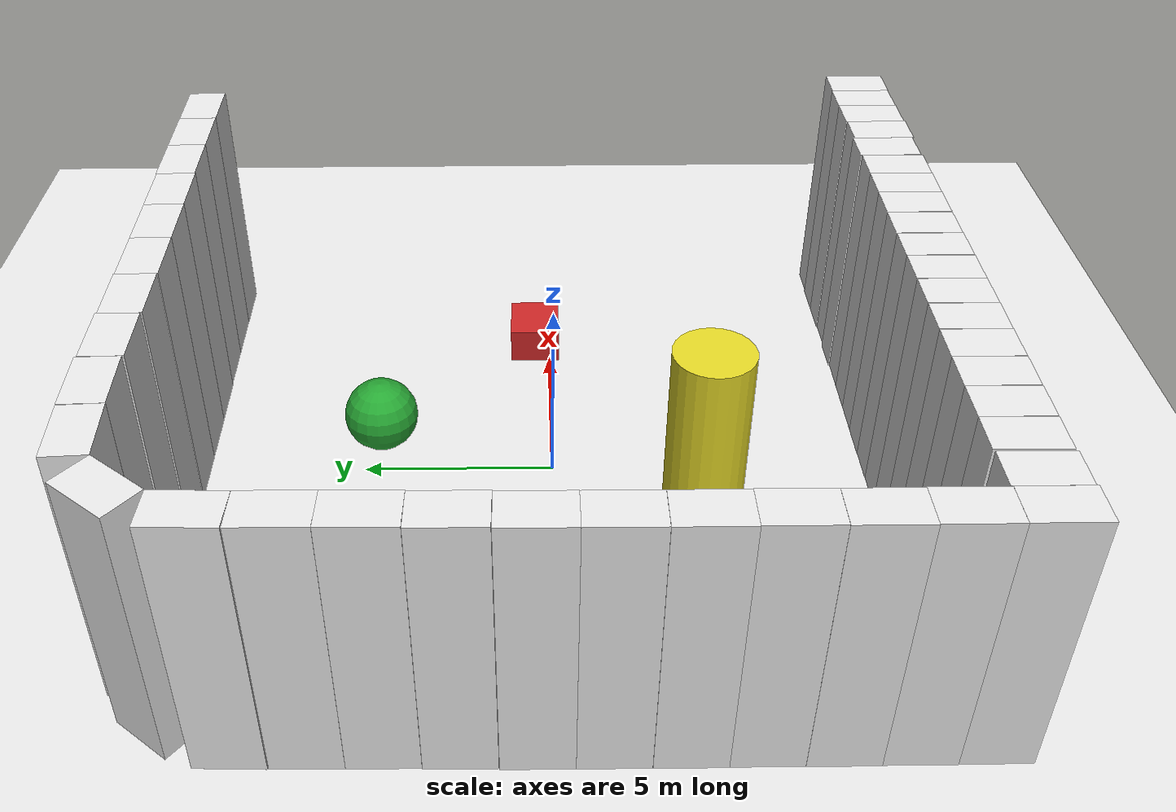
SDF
<sdf version="1.6">
 <world name="default">
  <light name="sun" type="directional">
   <pose>0 0 10 0 -0 0</pose>
   <diffuse>0.8 0.8 0.8 1</diffuse>
   <specular>0.1 0.1 0.1 1</specular>
   <attenuation>
    <range>1000</range>
    <constant>0.9</constant>
    <linear>0.01</linear>
    <quadratic>0.001</quadratic>
   </attenuation>
   <direction>-0.5 0.5 -1</direction>
  </light>
  <model name="ground_plane">
   <static>1</static>
   <link name="link">
    <collision name="collision">
     <geometry><plane><normal>0 0 1</normal><size>100 100</size></plane></geometry>
     <surface><friction><ode><mu>100</mu><mu2>50</mu2></ode></friction></surface>
    </collision>
    <visual name="visual">
     <cast_shadows>0</cast_shadows>
     <geometry><plane><normal>0 0 1</normal><size>100 100</size></plane></geometry>
     <material>
      <script><uri>file://media/materials/scripts/gazebo.material</uri><name>Gazebo/White</name></script>
     </material>
    </visual>
   </link>
  </model>
  <gravity>0 0 -9.8</gravity>
  <magnetic_field>6e-06 2.3e-05 -4.2e-05</magnetic_field>
  <atmosphere type="adiabatic"/>
  <physics name="default_physics" default="0" type="ode">
   <max_step_size>0.001</max_step_size>
   <real_time_factor>1</real_time_factor>
   <real_time_update_rate>1000</real_time_update_rate>
  </physics>
  <scene><ambient>0.4 0.4 0.4 1</ambient><background>0.7 0.7 0.7 1</background><shadows>1</shadows></scene>
  <spherical_coordinates>
   <surface_model>EARTH_WGS84</surface_model>
   <latitude_deg>0</latitude_deg>
   <longitude_deg>0</longitude_deg>
   <elevation>0</elevation>
   <heading_deg>0</heading_deg>
  </spherical_coordinates>
  <model name="unit_box_0_0">
   <pose>9.06464 -9.0624 3.4726 -0 -1e-06 0.005825</pose>
   <link name="link">
    <inertial>
     <mass>1</mass>
     <inertia>
      <ixx>0.166667</ixx>
      <ixy>0</ixy>
      <ixz>0</ixz>
      <iyy>0.166667</iyy>
      <iyz>0</iyz>
      <izz>0.166667</izz>
     </inertia>
    </inertial>
    <collision name="collision"><geometry><box><size>1 1.61233 6.9452</size></box></geometry></collision>
    <visual name="visual">
     <geometry><box><size>1 1.61233 6.9452</size></box></geometry>
     <material>
      <script><name>Gazebo/White</name><uri>file://media/materials/scripts/gazebo.material</uri></script>
     </material>
    </visual>
   </link>
  </model>
  <model name="unit_box_0_0_clone">
   <pose>8.06431 -9.0495 3.4726 0 -0 0.006054</pose>
   <link name="link">
    <inertial>
     <mass>1</mass>
     <inertia>
      <ixx>0.166667</ixx>
      <ixy>0</ixy>
      <ixz>0</ixz>
      <iyy>0.166667</iyy>
      <iyz>0</iyz>
      <izz>0.166667</izz>
     </inertia>
    </inertial>
    <collision name="collision"><geometry><box><size>1 1.61233 6.94521</size></box></geometry></collision>
    <visual name="visual">
     <geometry><box><size>1 1.61233 6.94521</size></box></geometry>
     <material>
      <script><name>Gazebo/White</name><uri>file://media/materials/scripts/gazebo.material</uri></script>
     </material>
    </visual>
   </link>
  </model>
  <model name="unit_box_0_0_clone_clone">
   <pose>7.06352 -9.06098 3.47261 0 -0 0.006307</pose>
   <link name="link">
    <inertial>
     <mass>1</mass>
     <inertia>
      <ixx>0.166667</ixx>
      <ixy>0</ixy>
      <ixz>0</ixz>
      <iyy>0.166667</iyy>
      <iyz>0</iyz>
      <izz>0.166667</izz>
     </inertia>
    </inertial>
    <collision name="collision"><geometry><box><size>1 1.61233 6.94521</size></box></geometry></collision>
    <visual name="visual">
     <geometry><box><size>1 1.61233 6.94521</size></box></geometry>
     <material>
      <script><name>Gazebo/White</name><uri>file://media/materials/scripts/gazebo.material</uri></script>
     </material>
    </visual>
   </link>
  </model>
  <model name="unit_box_0_0_clone_clone_clone">
   <pose>6.06347 -9.09784 3.47261 1e-06 -0 0.006324</pose>
   <link name="link">
    <inertial>
     <mass>1</mass>
     <inertia>
      <ixx>0.166667</ixx>
      <ixy>0</ixy>
      <ixz>0</ixz>
      <iyy>0.166667</iyy>
      <iyz>0</iyz>
      <izz>0.166667</izz>
     </inertia>
    </inertial>
    <collision name="collision"><geometry><box><size>1 1.61233 6.94521</size></box></geometry></collision>
    <visual name="visual">
     <geometry><box><size>1 1.61233 6.94521</size></box></geometry>
     <material>
      <script><name>Gazebo/White</name><uri>file://media/materials/scripts/gazebo.material</uri></script>
     </material>
    </visual>
   </link>
  </model>
  <model name="unit_box_0_0_clone_clone_clone_clone">
   <pose>5.06286 -9.05947 3.4726 0 -0 0.006063</pose>
   <link name="link">
    <inertial>
     <mass>1</mass>
     <inertia>
      <ixx>0.166667</ixx>
      <ixy>0</ixy>
      <ixz>0</ixz>
      <iyy>0.166667</iyy>
      <iyz>0</iyz>
      <izz>0.166667</izz>
     </inertia>
    </inertial>
    <collision name="collision"><geometry><box><size>1 1.61233 6.94521</size></box></geometry></collision>
    <visual name="visual">
     <geometry><box><size>1 1.61233 6.94521</size></box></geometry>
     <material>
      <script><name>Gazebo/White</name><uri>file://media/materials/scripts/gazebo.material</uri></script>
     </material>
    </visual>
   </link>
  </model>
  <model name="unit_box_0_0_clone_clone_clone_clone_clone">
   <pose>4.04969 -9.09946 3.47261 0 0 -0.003017</pose>
   <link name="link">
    <inertial>
     <mass>1</mass>
     <inertia>
      <ixx>0.166667</ixx>
      <ixy>0</ixy>
      <ixz>0</ixz>
      <iyy>0.166667</iyy>
      <iyz>0</iyz>
      <izz>0.166667</izz>
     </inertia>
    </inertial>
    <collision name="collision"><geometry><box><size>1 1.61233 6.94521</size></box></geometry></collision>
    <visual name="visual">
     <geometry><box><size>1 1.61233 6.94521</size></box></geometry>
     <material>
      <script><name>Gazebo/White</name><uri>file://media/materials/scripts/gazebo.material</uri></script>
     </material>
    </visual>
   </link>
  </model>
  <model name="unit_box_0_0_clone_clone_clone_clone_clone_clone">
   <pose>3.04946 -9.09953 3.47261 1e-06 0 -0.003255</pose>
   <link name="link">
    <inertial>
     <mass>1</mass>
     <inertia>
      <ixx>0.166667</ixx>
      <ixy>0</ixy>
      <ixz>0</ixz>
      <iyy>0.166667</iyy>
      <iyz>0</iyz>
      <izz>0.166667</izz>
     </inertia>
    </inertial>
    <collision name="collision"><geometry><box><size>1 1.61233 6.94521</size></box></geometry></collision>
    <visual name="visual">
     <geometry><box><size>1 1.61233 6.94521</size></box></geometry>
     <material>
      <script><name>Gazebo/White</name><uri>file://media/materials/scripts/gazebo.material</uri></script>
     </material>
    </visual>
   </link>
  </model>
  <model name="unit_box_0_0_clone_clone_clone_clone_clone_clone_0">
   <pose>2.04244 -9.10009 3.47261 0 0 -0.001369</pose>
   <link name="link">
    <inertial>
     <mass>1</mass>
     <inertia>
      <ixx>0.166667</ixx>
      <ixy>0</ixy>
      <ixz>0</ixz>
      <iyy>0.166667</iyy>
      <iyz>0</iyz>
      <izz>0.166667</izz>
     </inertia>
    </inertial>
    <collision name="collision"><geometry><box><size>1 1.61233 6.94521</size></box></geometry></collision>
    <visual name="visual">
     <geometry><box><size>1 1.61233 6.94521</size></box></geometry>
     <material>
      <script><name>Gazebo/White</name><uri>file://media/materials/scripts/gazebo.material</uri></script>
     </material>
    </visual>
   </link>
  </model>
  <model name="unit_box_0_0_clone_clone_clone_clone_clone_clone_0_clone">
   <pose>1.02988 -9.09657 3.4726 0 0 -0.002175</pose>
   <link name="link">
    <inertial>
     <mass>1</mass>
     <inertia>
      <ixx>0.166667</ixx>
      <ixy>0</ixy>
      <ixz>0</ixz>
      <iyy>0.166667</iyy>
      <iyz>0</iyz>
      <izz>0.166667</izz>
     </inertia>
    </inertial>
    <collision name="collision"><geometry><box><size>1 1.61233 6.94521</size></box></geometry></collision>
    <visual name="visual">
     <geometry><box><size>1 1.61233 6.94521</size></box></geometry>
     <material>
      <script><name>Gazebo/White</name><uri>file://media/materials/scripts/gazebo.material</uri></script>
     </material>
    </visual>
   </link>
  </model>
  <model name="unit_box_0_0_clone_clone_clone_clone_clone_clone_0_clone_clone">
   <pose>0.018222 -9.10438 3.47261 1e-06 -0 -0.003197</pose>
   <link name="link">
    <inertial>
     <mass>1</mass>
     <inertia>
      <ixx>0.166667</ixx>
      <ixy>0</ixy>
      <ixz>0</ixz>
      <iyy>0.166667</iyy>
      <iyz>0</iyz>
      <izz>0.166667</izz>
     </inertia>
    </inertial>
    <collision name="collision"><geometry><box><size>1 1.61233 6.94521</size></box></geometry></collision>
    <visual name="visual">
     <geometry><box><size>1 1.61233 6.94521</size></box></geometry>
     <material>
      <script><name>Gazebo/White</name><uri>file://media/materials/scripts/gazebo.material</uri></script>
     </material>
    </visual>
   </link>
  </model>
  <model name="unit_box_0_0_clone_clone_clone_clone_clone_clone_0_clone_clone_0">
   <pose>-0.993472 -9.10889 3.47261 1e-06 -0 -0.004012</pose>
   <link name="link">
    <inertial>
     <mass>1</mass>
     <inertia>
      <ixx>0.166667</ixx>
      <ixy>0</ixy>
      <ixz>0</ixz>
      <iyy>0.166667</iyy>
      <iyz>0</iyz>
      <izz>0.166667</izz>
     </inertia>
    </inertial>
    <collision name="collision"><geometry><box><size>1 1.61233 6.94521</size></box></geometry></collision>
    <visual name="visual">
     <geometry><box><size>1 1.61233 6.94521</size></box></geometry>
     <material>
      <script><name>Gazebo/White</name><uri>file://media/materials/scripts/gazebo.material</uri></script>
     </material>
    </visual>
   </link>
  </model>
  <model name="unit_box_0_0_clone_clone_clone_clone_clone_clone_0_clone_clone_1">
   <pose>-2.00536 -9.10932 3.47261 0 0 -0.002997</pose>
   <link name="link">
    <inertial>
     <mass>1</mass>
     <inertia>
      <ixx>0.166667</ixx>
      <ixy>0</ixy>
      <ixz>0</ixz>
      <iyy>0.166667</iyy>
      <iyz>0</iyz>
      <izz>0.166667</izz>
     </inertia>
    </inertial>
    <collision name="collision"><geometry><box><size>1 1.61233 6.94521</size></box></geometry></collision>
    <visual name="visual">
     <geometry><box><size>1 1.61233 6.94521</size></box></geometry>
     <material>
      <script><name>Gazebo/White</name><uri>file://media/materials/scripts/gazebo.material</uri></script>
     </material>
    </visual>
   </link>
  </model>
  <model name="unit_box_0_0_clone_clone_clone_clone_clone_clone_0_clone_clone_2">
   <pose>-3.01706 -9.10985 3.4726 0 0 -0.0036</pose>
   <link name="link">
    <inertial>
     <mass>1</mass>
     <inertia>
      <ixx>0.166667</ixx>
      <ixy>0</ixy>
      <ixz>0</ixz>
      <iyy>0.166667</iyy>
      <iyz>0</iyz>
      <izz>0.166667</izz>
     </inertia>
    </inertial>
    <collision name="collision"><geometry><box><size>1 1.61233 6.94521</size></box></geometry></collision>
    <visual name="visual">
     <geometry><box><size>1 1.61233 6.94521</size></box></geometry>
     <material>
      <script><name>Gazebo/White</name><uri>file://media/materials/scripts/gazebo.material</uri></script>
     </material>
    </visual>
   </link>
  </model>
  <model name="unit_box_0_0_clone_clone_clone_clone_clone_clone_0_clone_clone_3">
   <pose>-4.0287 -9.10986 3.4726 1e-06 -0 -0.002064</pose>
   <link name="link">
    <inertial>
     <mass>1</mass>
     <inertia>
      <ixx>0.166667</ixx>
      <ixy>0</ixy>
      <ixz>0</ixz>
      <iyy>0.166667</iyy>
      <iyz>0</iyz>
      <izz>0.166667</izz>
     </inertia>
    </inertial>
    <collision name="collision"><geometry><box><size>1 1.61233 6.94521</size></box></geometry></collision>
    <visual name="visual">
     <geometry><box><size>1 1.61233 6.94521</size></box></geometry>
     <material>
      <script><name>Gazebo/White</name><uri>file://media/materials/scripts/gazebo.material</uri></script>
     </material>
    </visual>
   </link>
  </model>
  <model name="unit_box_0_0_clone_clone_clone_clone_clone_clone_0_clone_clone_4">
   <pose>-5.04066 -9.11093 3.47261 1e-06 -0 -0.003355</pose>
   <link name="link">
    <inertial>
     <mass>1</mass>
     <inertia>
      <ixx>0.166667</ixx>
      <ixy>0</ixy>
      <ixz>0</ixz>
      <iyy>0.166667</iyy>
      <iyz>0</iyz>
      <izz>0.166667</izz>
     </inertia>
    </inertial>
    <collision name="collision"><geometry><box><size>1 1.61233 6.94521</size></box></geometry></collision>
    <visual name="visual">
     <geometry><box><size>1 1.61233 6.94521</size></box></geometry>
     <material>
      <script><name>Gazebo/White</name><uri>file://media/materials/scripts/gazebo.material</uri></script>
     </material>
    </visual>
   </link>
  </model>
  <model name="unit_box_0_0_clone_clone_clone_clone_clone_clone_0_clone_clone_5">
   <pose>-6.05513 -9.11245 3.47261 0 -0 0.000117</pose>
   <link name="link">
    <inertial>
     <mass>1</mass>
     <inertia>
      <ixx>0.166667</ixx>
      <ixy>0</ixy>
      <ixz>0</ixz>
      <iyy>0.166667</iyy>
      <iyz>0</iyz>
      <izz>0.166667</izz>
     </inertia>
    </inertial>
    <collision name="collision"><geometry><box><size>1 1.61233 6.94521</size></box></geometry></collision>
    <visual name="visual">
     <geometry><box><size>1 1.61233 6.94521</size></box></geometry>
     <material>
      <script><name>Gazebo/White</name><uri>file://media/materials/scripts/gazebo.material</uri></script>
     </material>
    </visual>
   </link>
  </model>
  <model name="unit_box_0_0_clone_clone_clone_clone_clone_clone_0_clone_clone_6">
   <pose>-7.06636 -9.11156 3.4726 -1e-06 -0 -0.001998</pose>
   <link name="link">
    <inertial>
     <mass>1</mass>
     <inertia>
      <ixx>0.166667</ixx>
      <ixy>0</ixy>
      <ixz>0</ixz>
      <iyy>0.166667</iyy>
      <iyz>0</iyz>
      <izz>0.166667</izz>
     </inertia>
    </inertial>
    <collision name="collision"><geometry><box><size>1 1.61233 6.94521</size></box></geometry></collision>
    <visual name="visual">
     <geometry><box><size>1 1.61233 6.94521</size></box></geometry>
     <material>
      <script><name>Gazebo/White</name><uri>file://media/materials/scripts/gazebo.material</uri></script>
     </material>
    </visual>
   </link>
  </model>
  <model name="unit_box_0_0_clone_clone_clone_clone_clone_clone_0_clone_clone_7">
   <pose>-8.116 -9.14753 3.47261 -1e-06 0 -0.001895</pose>
   <link name="link">
    <inertial>
     <mass>1</mass>
     <inertia>
      <ixx>0.166667</ixx>
      <ixy>0</ixy>
      <ixz>0</ixz>
      <iyy>0.166667</iyy>
      <iyz>0</iyz>
      <izz>0.166667</izz>
     </inertia>
    </inertial>
    <collision name="collision"><geometry><box><size>1 1.61233 6.94521</size></box></geometry></collision>
    <visual name="visual">
     <geometry><box><size>1 1.61233 6.94521</size></box></geometry>
     <material>
      <script><name>Gazebo/White</name><uri>file://media/materials/scripts/gazebo.material</uri></script>
     </material>
    </visual>
   </link>
  </model>
  <model name="unit_box_0_0_clone_clone_clone_clone_clone_clone_0_clone_clone_8">
   <pose>-9.11693 -9.19268 3.4726 0 0 -0.002944</pose>
   <link name="link">
    <inertial>
     <mass>1</mass>
     <inertia>
      <ixx>0.166667</ixx>
      <ixy>0</ixy>
      <ixz>0</ixz>
      <iyy>0.166667</iyy>
      <iyz>0</iyz>
      <izz>0.166667</izz>
     </inertia>
    </inertial>
    <collision name="collision"><geometry><box><size>1 1.61233 6.94521</size></box></geometry></collision>
    <visual name="visual">
     <geometry><box><size>1 1.61233 6.94521</size></box></geometry>
     <material>
      <script><name>Gazebo/White</name><uri>file://media/materials/scripts/gazebo.material</uri></script>
     </material>
    </visual>
   </link>
  </model>
  <model name="unit_box_0_0_clone_clone_clone_clone_clone_clone_0_clone_clone_9">
   <pose>-9.12482 -7.57934 3.47261 0 0 -0.002428</pose>
   <link name="link">
    <inertial>
     <mass>1</mass>
     <inertia>
      <ixx>0.166667</ixx>
      <ixy>0</ixy>
      <ixz>0</ixz>
      <iyy>0.166667</iyy>
      <iyz>0</iyz>
      <izz>0.166667</izz>
     </inertia>
    </inertial>
    <collision name="collision"><geometry><box><size>1 1.61233 6.94521</size></box></geometry></collision>
    <visual name="visual">
     <geometry><box><size>1 1.61233 6.94521</size></box></geometry>
     <material>
      <script><name>Gazebo/White</name><uri>file://media/materials/scripts/gazebo.material</uri></script>
     </material>
    </visual>
   </link>
  </model>
  <model name="unit_box_0_0_clone_clone_clone_clone_clone_clone_0_clone_clone_10">
   <pose>-9.13252 -5.9669 3.47261 0 0 -0.002486</pose>
   <link name="link">
    <inertial>
     <mass>1</mass>
     <inertia>
      <ixx>0.166667</ixx>
      <ixy>0</ixy>
      <ixz>0</ixz>
      <iyy>0.166667</iyy>
      <iyz>0</iyz>
      <izz>0.166667</izz>
     </inertia>
    </inertial>
    <collision name="collision"><geometry><box><size>1 1.61233 6.94521</size></box></geometry></collision>
    <visual name="visual">
     <geometry><box><size>1 1.61233 6.94521</size></box></geometry>
     <material>
      <script><name>Gazebo/White</name><uri>file://media/materials/scripts/gazebo.material</uri></script>
     </material>
    </visual>
   </link>
  </model>
  <model name="unit_box_0_0_clone_clone_clone_clone_clone_clone_0_clone_clone_10_clone">
   <pose>-9.12336 -4.35243 3.47261 1e-06 0 -0.000505</pose>
   <link name="link">
    <inertial>
     <mass>1</mass>
     <inertia>
      <ixx>0.166667</ixx>
      <ixy>0</ixy>
      <ixz>0</ixz>
      <iyy>0.166667</iyy>
      <iyz>0</iyz>
      <izz>0.166667</izz>
     </inertia>
    </inertial>
    <collision name="collision"><geometry><box><size>1 1.61233 6.94521</size></box></geometry></collision>
    <visual name="visual">
     <geometry><box><size>1 1.61233 6.94521</size></box></geometry>
     <material>
      <script><name>Gazebo/White</name><uri>file://media/materials/scripts/gazebo.material</uri></script>
     </material>
    </visual>
   </link>
  </model>
  <model name="unit_box_0_0_clone_clone_clone_clone_clone_clone_0_clone_clone_10_clone_0">
   <pose>-9.13022 -2.7401 3.47261 0 0 -0.000505</pose>
   <link name="link">
    <inertial>
     <mass>1</mass>
     <inertia>
      <ixx>0.166667</ixx>
      <ixy>0</ixy>
      <ixz>0</ixz>
      <iyy>0.166667</iyy>
      <iyz>0</iyz>
      <izz>0.166667</izz>
     </inertia>
    </inertial>
    <collision name="collision"><geometry><box><size>1 1.61233 6.94521</size></box></geometry></collision>
    <visual name="visual">
     <geometry><box><size>1 1.61233 6.94521</size></box></geometry>
     <material>
      <script><name>Gazebo/White</name><uri>file://media/materials/scripts/gazebo.material</uri></script>
     </material>
    </visual>
   </link>
  </model>
  <model name="unit_box_0_0_clone_clone_clone_clone_clone_clone_0_clone_clone_10_clone_1">
   <pose>-9.12342 -1.12498 3.47261 0 0 -0.000816</pose>
   <link name="link">
    <inertial>
     <mass>1</mass>
     <inertia>
      <ixx>0.166667</ixx>
      <ixy>0</ixy>
      <ixz>0</ixz>
      <iyy>0.166667</iyy>
      <iyz>0</iyz>
      <izz>0.166667</izz>
     </inertia>
    </inertial>
    <collision name="collision"><geometry><box><size>1 1.61233 6.94521</size></box></geometry></collision>
    <visual name="visual">
     <geometry><box><size>1 1.61233 6.94521</size></box></geometry>
     <material>
      <script><name>Gazebo/White</name><uri>file://media/materials/scripts/gazebo.material</uri></script>
     </material>
    </visual>
   </link>
  </model>
  <model name="unit_box_0_0_clone_clone_clone_clone_clone_clone_0_clone_clone_10_clone_2">
   <pose>-9.11834 0.48735 3.47261 0 0 -0.000818</pose>
   <link name="link">
    <inertial>
     <mass>1</mass>
     <inertia>
      <ixx>0.166667</ixx>
      <ixy>0</ixy>
      <ixz>0</ixz>
      <iyy>0.166667</iyy>
      <iyz>0</iyz>
      <izz>0.166667</izz>
     </inertia>
    </inertial>
    <collision name="collision"><geometry><box><size>1 1.61233 6.94521</size></box></geometry></collision>
    <visual name="visual">
     <geometry><box><size>1 1.61233 6.94521</size></box></geometry>
     <material>
      <script><name>Gazebo/White</name><uri>file://media/materials/scripts/gazebo.material</uri></script>
     </material>
    </visual>
   </link>
  </model>
  <model name="unit_box_0_0_clone_clone_clone_clone_clone_clone_0_clone_clone_10_clone_3">
   <pose>-9.08836 2.10737 3.4726 0 0 -0.00486</pose>
   <link name="link">
    <inertial>
     <mass>1</mass>
     <inertia>
      <ixx>0.166667</ixx>
      <ixy>0</ixy>
      <ixz>0</ixz>
      <iyy>0.166667</iyy>
      <iyz>0</iyz>
      <izz>0.166667</izz>
     </inertia>
    </inertial>
    <collision name="collision"><geometry><box><size>1 1.61233 6.94521</size></box></geometry></collision>
    <visual name="visual">
     <geometry><box><size>1 1.61233 6.94521</size></box></geometry>
     <material>
      <script><name>Gazebo/White</name><uri>file://media/materials/scripts/gazebo.material</uri></script>
     </material>
    </visual>
   </link>
  </model>
  <model name="unit_box_0_0_clone_clone_clone_clone_clone_clone_0_clone_clone_10_clone_4">
   <pose>-9.05489 3.7229 3.47261 0 0 -0.011303</pose>
   <link name="link">
    <inertial>
     <mass>1</mass>
     <inertia>
      <ixx>0.166667</ixx>
      <ixy>0</ixy>
      <ixz>0</ixz>
      <iyy>0.166667</iyy>
      <iyz>0</iyz>
      <izz>0.166667</izz>
     </inertia>
    </inertial>
    <collision name="collision"><geometry><box><size>1 1.61233 6.94521</size></box></geometry></collision>
    <visual name="visual">
     <geometry><box><size>1 1.61233 6.94521</size></box></geometry>
     <material>
      <script><name>Gazebo/White</name><uri>file://media/materials/scripts/gazebo.material</uri></script>
     </material>
    </visual>
   </link>
  </model>
  <model name="unit_box_0_0_clone_clone_clone_clone_clone_clone_0_clone_clone_10_clone_5">
   <pose>-9.04095 5.3355 3.47261 1e-06 -0 -0.011887</pose>
   <link name="link">
    <inertial>
     <mass>1</mass>
     <inertia>
      <ixx>0.166667</ixx>
      <ixy>0</ixy>
      <ixz>0</ixz>
      <iyy>0.166667</iyy>
      <iyz>0</iyz>
      <izz>0.166667</izz>
     </inertia>
    </inertial>
    <collision name="collision"><geometry><box><size>1 1.61233 6.94521</size></box></geometry></collision>
    <visual name="visual">
     <geometry><box><size>1 1.61233 6.94521</size></box></geometry>
     <material>
      <script><name>Gazebo/White</name><uri>file://media/materials/scripts/gazebo.material</uri></script>
     </material>
    </visual>
   </link>
  </model>
  <model name="unit_box_0_0_clone_clone_clone_clone_clone_clone_0_clone_clone_10_clone_6">
   <pose>-9.01651 6.95784 3.47261 0 0 -0.029886</pose>
   <link name="link">
    <inertial>
     <mass>1</mass>
     <inertia>
      <ixx>0.166667</ixx>
      <ixy>0</ixy>
      <ixz>0</ixz>
      <iyy>0.166667</iyy>
      <iyz>0</iyz>
      <izz>0.166667</izz>
     </inertia>
    </inertial>
    <collision name="collision"><geometry><box><size>1 1.61233 6.94521</size></box></geometry></collision>
    <visual name="visual">
     <geometry><box><size>1 1.61233 6.94521</size></box></geometry>
     <material>
      <script><name>Gazebo/White</name><uri>file://media/materials/scripts/gazebo.material</uri></script>
     </material>
    </visual>
   </link>
  </model>
  <model name="unit_box_0_0_clone_clone_clone_clone_clone_clone_0_clone_clone_10_clone_6_clone">
   <pose>-8.37126 8.69575 3.47261 0 0 -0.669206</pose>
   <link name="link">
    <inertial>
     <mass>1</mass>
     <inertia>
      <ixx>0.166667</ixx>
      <ixy>0</ixy>
      <ixz>0</ixz>
      <iyy>0.166667</iyy>
      <iyz>0</iyz>
      <izz>0.166667</izz>
     </inertia>
    </inertial>
    <collision name="collision"><geometry><box><size>1 1.61233 6.94521</size></box></geometry></collision>
    <visual name="visual">
     <geometry><box><size>1 1.61233 6.94521</size></box></geometry>
     <material>
      <script><name>Gazebo/White</name><uri>file://media/materials/scripts/gazebo.material</uri></script>
     </material>
    </visual>
   </link>
  </model>
  <model name="unit_box_0_0_clone_clone_clone_clone_clone_clone_0_clone_clone_10_clone_6_clone_0">
   <pose>-6.7051 9.57373 3.47261 0 0 -1.50966</pose>
   <link name="link">
    <inertial>
     <mass>1</mass>
     <inertia>
      <ixx>0.166667</ixx>
      <ixy>0</ixy>
      <ixz>0</ixz>
      <iyy>0.166667</iyy>
      <iyz>0</iyz>
      <izz>0.166667</izz>
     </inertia>
    </inertial>
    <collision name="collision"><geometry><box><size>1 1.61233 6.94521</size></box></geometry></collision>
    <visual name="visual">
     <geometry><box><size>1 1.61233 6.94521</size></box></geometry>
     <material>
      <script><name>Gazebo/White</name><uri>file://media/materials/scripts/gazebo.material</uri></script>
     </material>
    </visual>
   </link>
  </model>
  <model name="unit_box_0_0_clone_clone_clone_clone_clone_clone_0_clone_clone_10_clone_6_clone_0_clone">
   <pose>-5.08221 9.65991 3.4726 0 0 -1.53255</pose>
   <link name="link">
    <inertial>
     <mass>1</mass>
     <inertia>
      <ixx>0.166667</ixx>
      <ixy>0</ixy>
      <ixz>0</ixz>
      <iyy>0.166667</iyy>
      <iyz>0</iyz>
      <izz>0.166667</izz>
     </inertia>
    </inertial>
    <collision name="collision"><geometry><box><size>1 1.61233 6.94521</size></box></geometry></collision>
    <visual name="visual">
     <geometry><box><size>1 1.61233 6.94521</size></box></geometry>
     <material>
      <script><name>Gazebo/White</name><uri>file://media/materials/scripts/gazebo.material</uri></script>
     </material>
    </visual>
   </link>
  </model>
  <model name="unit_box_0_0_clone_clone_clone_clone_clone_clone_0_clone_clone_10_clone_6_clone_0_clone_clone">
   <pose>-3.45958 9.66109 3.4726 -1e-06 -0 -1.5528</pose>
   <link name="link">
    <inertial>
     <mass>1</mass>
     <inertia>
      <ixx>0.166667</ixx>
      <ixy>0</ixy>
      <ixz>0</ixz>
      <iyy>0.166667</iyy>
      <iyz>0</iyz>
      <izz>0.166667</izz>
     </inertia>
    </inertial>
    <collision name="collision"><geometry><box><size>1 1.61233 6.94521</size></box></geometry></collision>
    <visual name="visual">
     <geometry><box><size>1 1.61233 6.94521</size></box></geometry>
     <material>
      <script><name>Gazebo/White</name><uri>file://media/materials/scripts/gazebo.material</uri></script>
     </material>
    </visual>
   </link>
  </model>
  <model name="unit_box_0_0_clone_clone_clone_clone_clone_clone_0_clone_clone_10_clone_6_clone_0_clone_clone_clone">
   <pose>-1.84603 9.65202 3.47261 -1e-06 0 -1.55303</pose>
   <link name="link">
    <inertial>
     <mass>1</mass>
     <inertia>
      <ixx>0.166667</ixx>
      <ixy>0</ixy>
      <ixz>0</ixz>
      <iyy>0.166667</iyy>
      <iyz>0</iyz>
      <izz>0.166667</izz>
     </inertia>
    </inertial>
    <collision name="collision"><geometry><box><size>1 1.61233 6.94521</size></box></geometry></collision>
    <visual name="visual">
     <geometry><box><size>1 1.61233 6.94521</size></box></geometry>
     <material>
      <script><name>Gazebo/White</name><uri>file://media/materials/scripts/gazebo.material</uri></script>
     </material>
    </visual>
   </link>
  </model>
  <model name="unit_box_0_0_clone_clone_clone_clone_clone_clone_0_clone_clone_10_clone_6_clone_0_clone_clone_clone_0">
   <pose>-0.233592 9.66203 3.4726 0 0 -1.55298</pose>
   <link name="link">
    <inertial>
     <mass>1</mass>
     <inertia>
      <ixx>0.166667</ixx>
      <ixy>0</ixy>
      <ixz>0</ixz>
      <iyy>0.166667</iyy>
      <iyz>0</iyz>
      <izz>0.166667</izz>
     </inertia>
    </inertial>
    <collision name="collision"><geometry><box><size>1 1.61233 6.94521</size></box></geometry></collision>
    <visual name="visual">
     <geometry><box><size>1 1.61233 6.94521</size></box></geometry>
     <material>
      <script><name>Gazebo/White</name><uri>file://media/materials/scripts/gazebo.material</uri></script>
     </material>
    </visual>
   </link>
  </model>
  <model name="unit_box_0_0_clone_clone_clone_clone_clone_clone_0_clone_clone_10_clone_6_clone_0_clone_clone_clone_1">
   <pose>1.37852 9.69356 3.47261 0 0 -1.5528</pose>
   <link name="link">
    <inertial>
     <mass>1</mass>
     <inertia>
      <ixx>0.166667</ixx>
      <ixy>0</ixy>
      <ixz>0</ixz>
      <iyy>0.166667</iyy>
      <iyz>0</iyz>
      <izz>0.166667</izz>
     </inertia>
    </inertial>
    <collision name="collision"><geometry><box><size>1 1.61233 6.94521</size></box></geometry></collision>
    <visual name="visual">
     <geometry><box><size>1 1.61233 6.94521</size></box></geometry>
     <material>
      <script><name>Gazebo/White</name><uri>file://media/materials/scripts/gazebo.material</uri></script>
     </material>
    </visual>
   </link>
  </model>
  <model name="unit_box_0_0_clone_clone_clone_clone_clone_clone_0_clone_clone_10_clone_6_clone_0_clone_clone_clone_2">
   <pose>2.99056 9.72757 3.47261 1e-06 -0 -1.55269</pose>
   <link name="link">
    <inertial>
     <mass>1</mass>
     <inertia>
      <ixx>0.166667</ixx>
      <ixy>0</ixy>
      <ixz>0</ixz>
      <iyy>0.166667</iyy>
      <iyz>0</iyz>
      <izz>0.166667</izz>
     </inertia>
    </inertial>
    <collision name="collision"><geometry><box><size>1 1.61233 6.94521</size></box></geometry></collision>
    <visual name="visual">
     <geometry><box><size>1 1.61233 6.94521</size></box></geometry>
     <material>
      <script><name>Gazebo/White</name><uri>file://media/materials/scripts/gazebo.material</uri></script>
     </material>
    </visual>
   </link>
  </model>
  <model name="unit_box_0_0_clone_clone_clone_clone_clone_clone_0_clone_clone_10_clone_6_clone_0_clone_clone_clone_3">
   <pose>4.60229 9.77788 3.4726 0 0 -1.55262</pose>
   <link name="link">
    <inertial>
     <mass>1</mass>
     <inertia>
      <ixx>0.166667</ixx>
      <ixy>0</ixy>
      <ixz>0</ixz>
      <iyy>0.166667</iyy>
      <iyz>0</iyz>
      <izz>0.166667</izz>
     </inertia>
    </inertial>
    <collision name="collision"><geometry><box><size>1 1.61233 6.94521</size></box></geometry></collision>
    <visual name="visual">
     <geometry><box><size>1 1.61233 6.94521</size></box></geometry>
     <material>
      <script><name>Gazebo/White</name><uri>file://media/materials/scripts/gazebo.material</uri></script>
     </material>
    </visual>
   </link>
  </model>
  <model name="unit_box_0_0_clone_clone_clone_clone_clone_clone_0_clone_clone_10_clone_6_clone_0_clone_clone_clone_4">
   <pose>6.21441 9.80636 3.47261 0 0 -1.55262</pose>
   <link name="link">
    <inertial>
     <mass>1</mass>
     <inertia>
      <ixx>0.166667</ixx>
      <ixy>0</ixy>
      <ixz>0</ixz>
      <iyy>0.166667</iyy>
      <iyz>0</iyz>
      <izz>0.166667</izz>
     </inertia>
    </inertial>
    <collision name="collision"><geometry><box><size>1 1.61233 6.94521</size></box></geometry></collision>
    <visual name="visual">
     <geometry><box><size>1 1.61233 6.94521</size></box></geometry>
     <material>
      <script><name>Gazebo/White</name><uri>file://media/materials/scripts/gazebo.material</uri></script>
     </material>
    </visual>
   </link>
  </model>
  <model name="unit_box_0_0_clone_clone_clone_clone_clone_clone_0_clone_clone_10_clone_6_clone_0_clone_clone_clone_5">
   <pose>7.82695 9.83011 3.4726 -1e-06 -0 -1.5528</pose>
   <link name="link">
    <inertial>
     <mass>1</mass>
     <inertia>
      <ixx>0.166667</ixx>
      <ixy>0</ixy>
      <ixz>0</ixz>
      <iyy>0.166667</iyy>
      <iyz>0</iyz>
      <izz>0.166667</izz>
     </inertia>
    </inertial>
    <collision name="collision"><geometry><box><size>1 1.61233 6.94521</size></box></geometry></collision>
    <visual name="visual">
     <geometry><box><size>1 1.61233 6.94521</size></box></geometry>
     <material>
      <script><name>Gazebo/White</name><uri>file://media/materials/scripts/gazebo.material</uri></script>
     </material>
    </visual>
   </link>
  </model>
  <model name="unit_sphere_0">
   <pose>1.18358 4.61913 0.984617 0 -0 0</pose>
   <link name="link">
    <inertial>
     <mass>1</mass>
     <inertia><ixx>0.1</ixx><ixy>0</ixy><ixz>0</ixz><iyy>0.1</iyy><iyz>0</iyz><izz>0.1</izz></inertia>
    </inertial>
    <collision name="collision"><geometry><sphere><radius>0.984615</radius></sphere></geometry></collision>
    <visual name="visual">
     <geometry><sphere><radius>0.984615</radius></sphere></geometry>
     <material>
      <script><name>Gazebo/Green</name><uri>file://media/materials/scripts/gazebo.material</uri></script>
     </material>
    </visual>
   </link>
  </model>
  <model name="unit_box_0">
   <pose>5.71741 0.438946 0.499995 -0 6e-06 -8e-06</pose>
   <link name="link">
    <inertial>
     <mass>1</mass>
     <inertia>
      <ixx>0.166667</ixx>
      <ixy>0</ixy>
      <ixz>0</ixz>
      <iyy>0.166667</iyy>
      <iyz>0</iyz>
      <izz>0.166667</izz>
     </inertia>
    </inertial>
    <collision name="collision"><geometry><box><size>1.58539 1.40599 1</size></box></geometry></collision>
    <visual name="visual">
     <geometry><box><size>1.58539 1.40599 1</size></box></geometry>
     <material>
      <script><name>Gazebo/Red</name><uri>file://media/materials/scripts/gazebo.material</uri></script>
     </material>
    </visual>
   </link>
  </model>
  <model name="unit_cylinder_0_0">
   <pose>-1.7041 -3.79272 2.51846 0 0 -0.000458</pose>
   <link name="link">
    <inertial>
     <mass>1</mass>
     <inertia><ixx>0.145833</ixx><ixy>0</ixy><ixz>0</ixz><iyy>0.145833</iyy><iyz>0</iyz><izz>0.125</izz></inertia>
    </inertial>
    <collision name="collision">
     <geometry><cylinder><radius>1.02944</radius><length>5.03692</length></cylinder></geometry>
    </collision>
    <visual name="visual">
     <geometry><cylinder><radius>1.02944</radius><length>5.03692</length></cylinder></geometry>
     <material>
      <script><name>Gazebo/Yellow</name><uri>file://media/materials/scripts/gazebo.material</uri></script>
     </material>
    </visual>
   </link>
  </model>
 </world>
</sdf>
